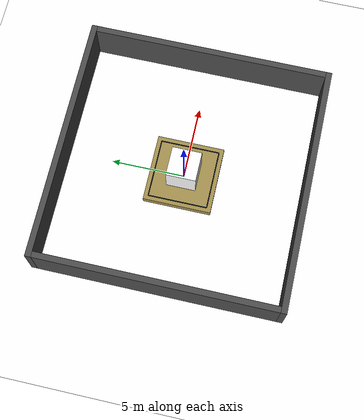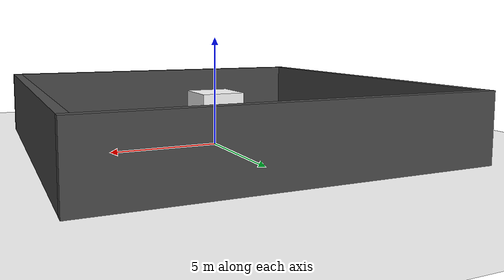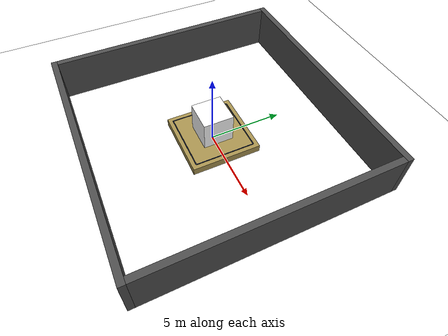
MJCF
<mujoco model="tatami">
  <compiler angle="degree" coordinate="local" inertiafromgeom="true"/>
  <option integrator="RK4" timestep="0.01"/>
  <size nconmax="1000" njmax="1000"/>
  <default>
    <joint armature="1" damping="1" limited="true"/>
  </default>
  <asset>
    <texture builtin="gradient" height="100" rgb1=".8 .8 1" rgb2="0 0 0" type="skybox" width="100"/>
    <texture builtin="flat" height="1278" mark="cross" markrgb="1 1 1" name="texgeom" random="0.01" rgb1="0.8 0.6 0.4" rgb2="0.8 0.6 0.4" type="cube" width="127"/>
    <texture builtin="flat" height="100" name="floorplane" rgb1=".2 0.2 0.2" rgb2="0 0 0" type="2d" width="100"/>
    <texture builtin="flat" height="100" name="tatamiplane" rgb1=".65 0.57 0.31" rgb2="0 0 0" type="2d" width="100"/>
    <material name="MatPlane" reflectance="0.1" shininess="1" specular="1" texrepeat="1 1" texture="floorplane"/>
    <material name="TatamiPlane" reflectance="0.25" shininess="1" specular="1" texrepeat="1 1" texture="tatamiplane"/>
    <material name="geom" texture="texgeom" texuniform="true"/>
  </asset>
  <worldbody>
    <light cutoff="100" diffuse="1 1 1" dir="0 0 -1.3" directional="true" exponent="2" pos="0 0 1.3" specular=".5 .5 .5"/>
    <geom contype="1" conaffinity="1" friction="1 .7 .7" condim="3" material="MatPlane" name="floor" pos="0 0 -.025" rgba="1 1 1 1" size="20 20 0.125" type="plane"/>
    <geom conaffinity="1" condim="3" contype="1" friction="1 .7 .7" material="TatamiPlane" name="tatami" size="2.3 2.3 .25" pos="0 0 0.25" type="box" />
    <geom fromto="-2 2 .5  2 2 .5" name="topborder" rgba=".18 .23 .38 1" size=".03" type="cylinder"/>
    <geom fromto="2 -2 .5  2 2 .5" name="rightborder" rgba=".18 .23 .38 1" size=".03" type="cylinder"/>
    <geom fromto="-2 -2 .5  2 -2 .5" name="bottomborder" rgba=".18 .23 .38 1" size=".03" type="cylinder"/>
    <geom fromto="-2 -2 .5  -2 2 .5" name="leftborder" rgba=".18 .23 .38 1" size=".03" type="cylinder"/>
    <!-- Walls -->
    <body name="south_wall" pos="0 -8.15 1.5">
      <geom name="s_wall" type="box" size="8.35 0.20 1.5" rgba="0.3 0.3 0.3 1"/>
    </body>
    <body name="north_wall" pos="0 8.15 1.5">
      <geom name="n_wall" type="box" size="8.35 0.20 1.5" rgba="0.3 0.3 0.3 1"/>
    </body>

    <body name="west_wall" pos="-8.15 0 1.5">
      <geom name="w_wall" type="box" size="0.2 7.95 1.5" rgba="0.3 0.3 0.3 1"/>
    </body>
    <body name="east_wall" pos="8.15 0 1.5">
      <geom name="e_wall" type="box" size="0.2 7.95 1.5" rgba="0.3 0.3 0.3 1"/>
    </body>

    <body name="northwest" pos="8.15 0 1.5">
      <geom name="nw_wall" type="box" size="0.2 7.95 1.5" rgba="0.3 0.3 0.3 1"/>
    </body>
    <body name="northeast" pos="8.15 0 1.5">
      <geom name="ne_wall" type="box" size="0.2 7.95 1.5" rgba="0.3 0.3 0.3 1"/>
    </body>
    <!-- Add a pushable box -->
    <body name="pushable_obj" pos="0 0 1.5">
      <geom type="box" size="1 1 1" rgba="1 1 1 1" material="" mass="1" contype="1"/>
      <joint armature="0" axis="1 0 0" damping="0.0" limited="true" margin="0.01" range="-10 10" pos="0 0 0" type="slide"/>
      <joint armature="0" axis="0 1 0" damping="0.0" limited="true" margin="0.01" range="-10 10" pos="0 0 0" type="slide"/>
    </body>

  </worldbody>
</mujoco>
